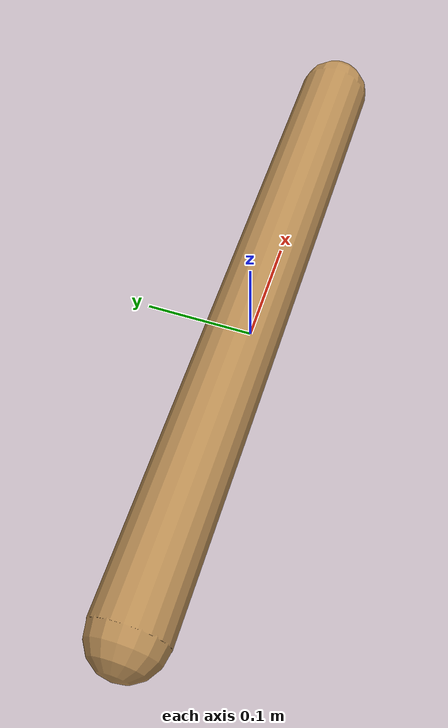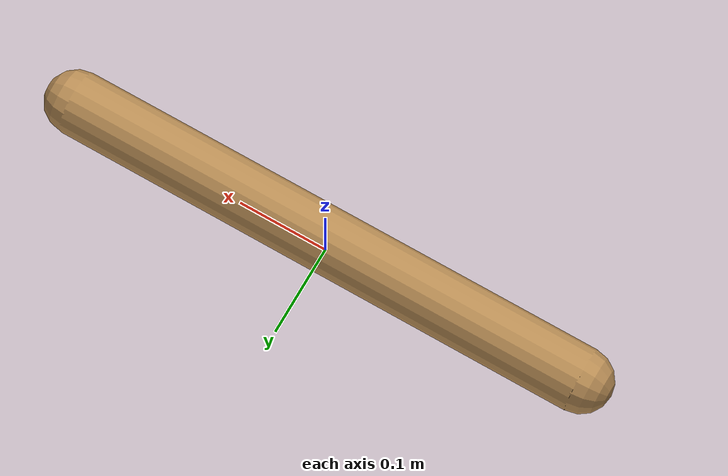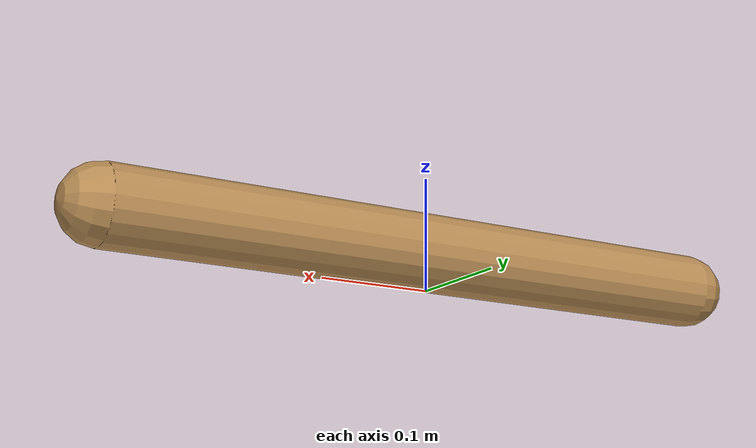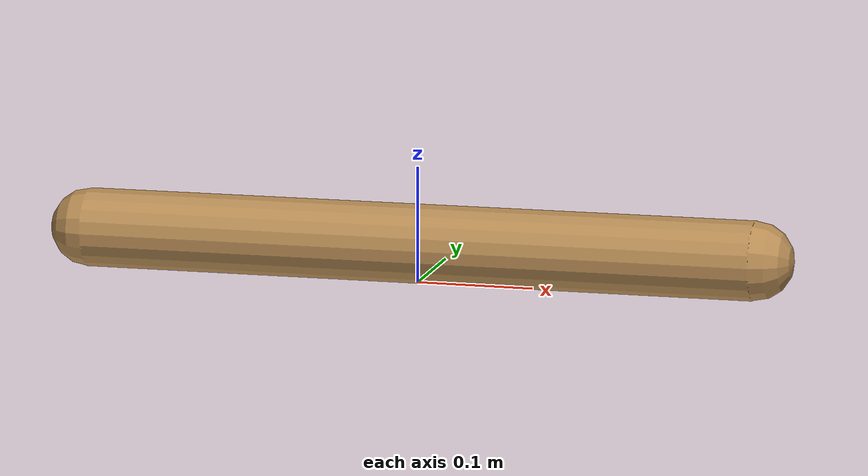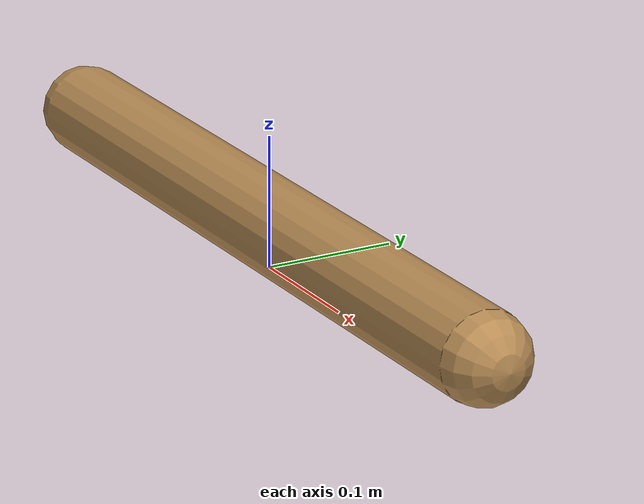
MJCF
<mujoco model="stick_prim_wood_34">
  <compiler angle="radian"/>
  <asset>
  </asset>
  <worldbody>
    <body name="stick_prim_wood_34">
      <freejoint/>
      <geom name="stick_prim_wood_34_g0" type="capsule" size="0.034" fromto="-0.291 0 0.034 0.291 0 0.034" rgba="0.72 0.55 0.33 1" mass="0.05" friction="0.05 0.05 0.005" condim="4"/>
    </body>
  </worldbody>
</mujoco>
